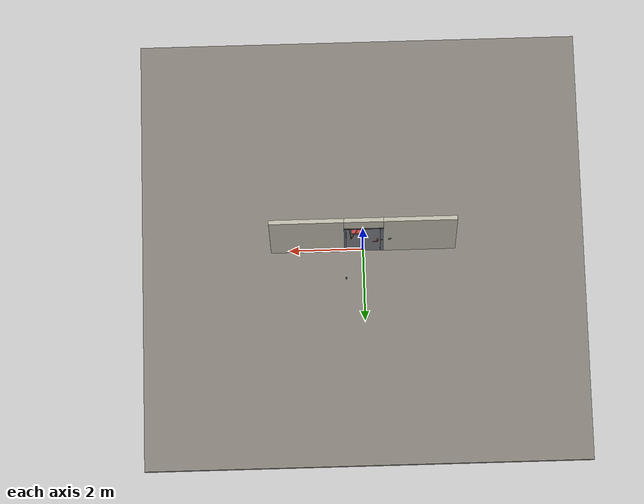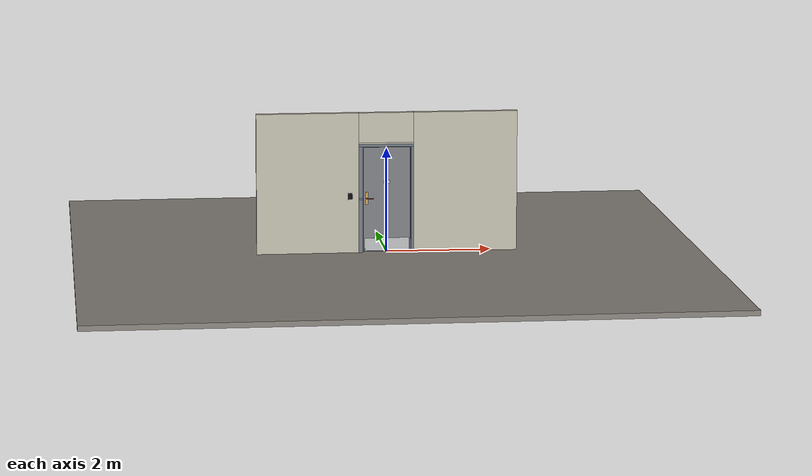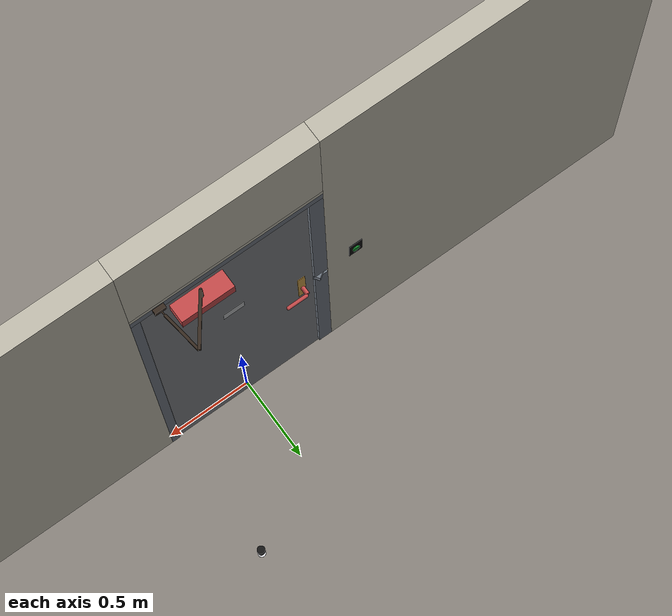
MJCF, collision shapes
<?xml version="1.0" ?>
<mujoco model="db0719_swing_single_full">
  <compiler angle="radian" meshdir="../../hardware" texturedir="../../textures" autolimits="true" inertiafromgeom="false"/>
  <option timestep="0.002" integrator="implicitfast" cone="elliptic" impratio="10" noslip_iterations="3">
    <flag multiccd="enable"/>
  </option>
  <size memory="16M"/>
  <default>
    <geom condim="4" solref="0.005 1" solimp="0.95 0.99 0.001"/>
    <joint solreflimit="0.005 1" solimplimit="0.95 0.99 0.001"/>
    <tendon solreflimit="0.005 1"/>
    <equality solref="0.002 1"/>
  </default>
  <visual>
    <headlight ambient="0.4 0.4 0.4" diffuse="0.7 0.7 0.7" specular="0.2 0.2 0.2"/>
    <quality shadowsize="4096"/>
    <map znear="0.01" zfar="60"/>
  </visual>
  <asset>
    <mesh name="closer_body_fdc4667657" file="closer_body_fdc4667657.obj"/>
    <mesh name="hinge_dcb8da44bf" file="hinge_dcb8da44bf.obj"/>
    <mesh name="hinge_jamb_8e208d7310" file="hinge_jamb_8e208d7310.obj"/>
    <mesh name="lever_6fbb1e9593" file="lever_6fbb1e9593.obj"/>
    <material name="mat_floor" rgba="0.55 0.53 0.5 1" specular="0.2" shininess="0.15" reflectance="0"/>
    <material name="mat_wall" rgba="0.78 0.76 0.7 1" specular="0.2" shininess="0.1" reflectance="0"/>
    <material name="mat_leaf" rgba="0.5 0.51 0.53 1" specular="0.2" shininess="0.32" reflectance="0"/>
    <material name="mat_hinge" rgba="0.65 0.66 0.68 1" specular="0.74" shininess="0.5" reflectance="0.36"/>
    <material name="mat_op_brass" rgba="0.85 0.66 0.3 1" specular="0.8" shininess="0.75" reflectance="0.4"/>
    <material name="mat_trim" rgba="0.85 0.66 0.3 1" specular="0.8" shininess="0.75" reflectance="0.4"/>
    <material name="mat_bolt" rgba="0.85 0.66 0.3 1" specular="0.8" shininess="0.75" reflectance="0.4"/>
    <material name="mat_frame" rgba="0.45 0.48 0.52 1" specular="0.32" shininess="0.6" reflectance="0.08"/>
    <material name="mat_closer" rgba="0.22 0.17 0.13 1" specular="0.8" shininess="0.6" reflectance="0.4"/>
    <material name="mat_kick" rgba="0.75 0.76 0.77 1" specular="0.8" shininess="0.65" reflectance="0.4"/>
    <material name="mat_sign" rgba="0.75 0.76 0.77 1" specular="0.8" shininess="0.65" reflectance="0.4"/>
    <material name="mat_wallreader" rgba="0.05 0.05 0.05 1" specular="0.38" shininess="0.3" reflectance="0.12"/>
    <material name="mat_rex" rgba="0.1 0.6 0.2 1" specular="0.2" shininess="0.6" reflectance="0"/>
    <material name="mat_bumper_stop" rgba="0.08 0.08 0.08 1" specular="0.2" shininess="0.1" reflectance="0"/>
    <material name="mat_stop_base" rgba="0.9 0.9 0.92 1" specular="0.8" shininess="0.9" reflectance="0.4"/>
    <texture name="skybox" type="skybox" builtin="gradient" rgb1="0.6 0.7 0.85" rgb2="0.9 0.92 0.95" width="256" height="256"/>
  </asset>
  <worldbody>
    <light name="sun" pos="1.5 -2.5 4" dir="-0.3 0.5 -0.8" directional="true" diffuse="0.8 0.8 0.8" specular="0.3 0.3 0.3" castshadow="true"/>
    <light name="fill" pos="-1.5 2.5 3" dir="0.3 -0.5 -0.7" directional="true" diffuse="0.35 0.35 0.4" castshadow="false"/>
    <camera name="robot_view" pos="0 -2.564187 1.734312" xyaxes="1 0 0 0 0.26963 0.962964" fovy="52"/>
    <camera name="far_view" pos="0 2.520188 1.734312" xyaxes="-1 0 0 0 -0.26963 0.962964" fovy="52"/>
    <camera name="iso" pos="-1.932062 -2.157437 2.141063" xyaxes="0.741536 -0.670913 0 0.242917 0.268487 0.932151" fovy="46"/>
    <camera name="detail_handle" pos="-0.102 -0.8835 1.32" xyaxes="0.97561 0.219512 0 -0.070934 0.315262 0.94635" fovy="38"/>
    <geom name="floor" type="box" size="6 6 0.05" pos="0 0 -0.05" material="mat_floor" group="0" contype="1" conaffinity="1" friction="0.8 0.005 0.0001" density="2400"/>
    <geom name="wall_left" type="box" size="0.9795 0.0575 1.35" pos="-1.5205 -0.022 1.35" material="mat_wall" group="0" contype="1" conaffinity="1" friction="0.6 0.005 0.0001" density="800"/>
    <geom name="wall_right" type="box" size="0.9945 0.0575 1.35" pos="1.5055 -0.022 1.35" material="mat_wall" group="0" contype="1" conaffinity="1" friction="0.6 0.005 0.0001" density="800"/>
    <geom name="wall_header" type="box" size="0.526 0.0575 0.2875" pos="-0.015 -0.022 2.4125" material="mat_wall" group="0" contype="1" conaffinity="1" friction="0.6 0.005 0.0001" density="800"/>
    <geom name="hinge_0_jamb" type="mesh" mesh="hinge_jamb_8e208d7310" pos="0.458 0.0355 0.259" quat="0 0 0 1" material="mat_hinge" group="1" contype="0" conaffinity="0" density="7850"/>
    <geom name="hinge_1_jamb" type="mesh" mesh="hinge_jamb_8e208d7310" pos="0.458 0.0355 1.025" quat="0 0 0 1" material="mat_hinge" group="1" contype="0" conaffinity="0" density="7850"/>
    <geom name="hinge_2_jamb" type="mesh" mesh="hinge_jamb_8e208d7310" pos="0.458 0.0355 1.861" quat="0 0 0 1" material="mat_hinge" group="1" contype="0" conaffinity="0" density="7850"/>
    <geom name="jamb_hinge" type="box" size="0.025 0.0575 1.0225" pos="0.486 -0.022 1.0225" material="mat_frame" group="0" contype="1" conaffinity="1" friction="0.6 0.005 0.0001" density="300"/>
    <geom name="strike_1040_wall_n" type="box" size="0.04 0.035 0.0183" pos="-0.501 -0.0445 1.04" material="mat_frame" group="0" contype="1" conaffinity="1" friction="0.6 0.005 0.0001" density="300"/>
    <geom name="strike_1040_wall_p" type="box" size="0.04 0.008 0.0183" pos="-0.501 0.0175 1.04" material="mat_frame" group="0" contype="1" conaffinity="1" friction="0.6 0.005 0.0001" density="300"/>
    <geom name="strike_1040_ramp" type="box" size="0.04 0.018028 0.0183" pos="-0.504282 0.018312 1.04" quat="0.957092 0 0 0.289784" material="mat_frame" group="0" contype="1" conaffinity="1" friction="0.12 0.005 0.0001" density="300"/>
    <geom name="strike_1040_back" type="box" size="0.0285 0.0095 0.0183" pos="-0.5125 0 1.04" material="mat_frame" group="0" contype="1" conaffinity="1" friction="0.6 0.005 0.0001" density="300"/>
    <geom name="jamb_strike_0" type="box" size="0.04 0.0575 0.51085" pos="-0.501 -0.022 0.51085" material="mat_frame" group="0" contype="1" conaffinity="1" friction="0.6 0.005 0.0001" density="300"/>
    <geom name="jamb_strike_1" type="box" size="0.04 0.0575 0.49335" pos="-0.501 -0.022 1.55165" material="mat_frame" group="0" contype="1" conaffinity="1" friction="0.6 0.005 0.0001" density="300"/>
    <geom name="jamb_head" type="box" size="0.526 0.0575 0.025" pos="-0.015 -0.022 2.07" material="mat_frame" group="0" contype="1" conaffinity="1" friction="0.6 0.005 0.0001" density="300"/>
    <geom name="head_stud" type="box" size="0.526 0.0575 0.015" pos="-0.015 -0.022 2.11" material="mat_wall" group="0" contype="1" conaffinity="1" friction="0.6 0.005 0.0001" density="500"/>
    <geom name="stop_hinge" type="box" size="0.0055 0.016 1.0225" pos="0.4555 -0.045 1.0225" material="mat_frame" group="0" contype="1" conaffinity="1" friction="0.6 0.005 0.0001" density="300"/>
    <geom name="stop_strike" type="box" size="0.0055 0.016 1.0225" pos="-0.4555 -0.045 1.0225" material="mat_frame" group="0" contype="1" conaffinity="1" friction="0.6 0.005 0.0001" density="300"/>
    <geom name="stop_head" type="box" size="0.461 0.016 0.0055" pos="0 -0.045 2.0395" material="mat_frame" group="0" contype="1" conaffinity="1" friction="0.6 0.005 0.0001" density="300"/>
    <geom name="closer_bracket" type="box" size="0.03 0.012 0.014" pos="0.361 0.0475 2.075" material="mat_closer" group="1" contype="0" conaffinity="0" density="2700"/>
    <geom name="wall_reader" type="box" size="0.04 0.015 0.06" pos="-0.711 -0.0945 1.1" material="mat_wallreader" group="0" contype="1" conaffinity="1" friction="0.6 0.005 0.0001" density="1000"/>
    <geom name="rex_plate" type="box" size="0.04 0.003 0.06" pos="-0.711 0.0385 1.1" material="mat_wallreader" group="1" contype="0" conaffinity="0" density="1000"/>
    <geom name="door_stop_base" type="cylinder" size="0.022 0.003" pos="0.474 0.8124 0.003" material="mat_stop_base" group="0" contype="1" conaffinity="1" friction="0.6 0.005 0.0001" density="7850"/>
    <geom name="door_stop_post" type="cylinder" size="0.012 0.0245" pos="0.474 0.8124 0.0305" material="mat_stop_base" group="0" contype="1" conaffinity="1" friction="0.6 0.005 0.0001" density="7850"/>
    <geom name="door_stop_bumper" type="cylinder" size="0.022 0.02" pos="0.474 0.8124 0.075" material="mat_bumper_stop" group="0" contype="1" conaffinity="1" friction="0.6 0.005 0.0001" density="1100"/>
    <site name="approach_point" pos="0 -1.5 0" quat="1 0 0 0" size="0.05" rgba="0.2 0.9 0.2 0.5" group="4"/>
    <site name="goal_point" pos="0 1.5 0" quat="1 0 0 0" size="0.05" rgba="0.2 0.9 0.2 0.5" group="4"/>
    <site name="door_plane_center" pos="0 0 1.0225" quat="1 0 0 0" size="0.02" rgba="0.2 0.9 0.2 0.5" group="4"/>
    <body name="rex_button" pos="-0.711 0.0415 1.1">
      <inertial pos="0 0.004 0" mass="0.010053" quat="0 0 0.707107 -0.707107" diaginertia="0.000001059 0.000001059 0.000002011"/>
      <joint name="rex_button_slide" type="slide" axis="0 -1 0" limited="true" range="0 0.004" damping="1" stiffness="1500" springref="-0.004" armature="0.1"/>
      <geom name="rex_button_geom" type="cylinder" size="0.02 0.004" pos="0 0.004 0" quat="0.707107 -0.707107 0 0" material="mat_rex" group="0" contype="1" conaffinity="1" friction="0.6 0.005 0.0001" density="1000"/>
    </body>
    <body name="leaf" pos="0.461 0 0">
      <inertial pos="-0.434592 0.010511 1.134393" mass="95.622279" quat="0.511395 -0.514233 -0.496987 -0.476491" diaginertia="6.172452264 39.978130573 45.982318865"/>
      <joint name="leaf_hinge" type="hinge" axis="0 0 -1" pos="-0.003 0.0355 0" limited="true" range="0 1.570796" damping="12.25611" frictionloss="1.067746" stiffness="14.998762" springref="-3.132925" armature="0.02"/>
      <geom name="leaf_slab" type="box" size="0.457 0.0285 1.016" pos="-0.46 0 1.025" material="mat_leaf" group="0" contype="1" conaffinity="1" friction="0.4 0.005 0.0001" density="1"/>
      <geom name="hinge_0" type="mesh" mesh="hinge_dcb8da44bf" pos="-0.003 0.0355 0.259" quat="0 0 0 1" material="mat_hinge" group="1" contype="0" conaffinity="0" density="7850"/>
      <geom name="hinge_1" type="mesh" mesh="hinge_dcb8da44bf" pos="-0.003 0.0355 1.025" quat="0 0 0 1" material="mat_hinge" group="1" contype="0" conaffinity="0" density="7850"/>
      <geom name="hinge_2" type="mesh" mesh="hinge_dcb8da44bf" pos="-0.003 0.0355 1.861" quat="0 0 0 1" material="mat_hinge" group="1" contype="0" conaffinity="0" density="7850"/>
      <geom name="leaf_handle_escutcheon_n" type="box" size="0.0225 0.0015 0.12" pos="-0.847 -0.03 1.04" material="mat_op_brass" group="1" contype="0" conaffinity="0" density="3000"/>
      <geom name="leaf_handle_escutcheon_p" type="box" size="0.0225 0.0015 0.12" pos="-0.847 0.03 1.04" material="mat_op_brass" group="1" contype="0" conaffinity="0" density="3000"/>
      <geom name="leaf_latch_bolt_faceplate" type="box" size="0.0006 0.014 0.0283" pos="-0.9164 0 1.04" material="mat_bolt" group="1" contype="0" conaffinity="0" density="8500"/>
      <geom name="closer_body" type="mesh" mesh="closer_body_fdc4667657" pos="-0.3 0.0285 1.952" quat="0 0 0.707107 0.707107" material="mat_closer" group="1" contype="0" conaffinity="0" density="2000"/>
      <geom name="closer_body_col" type="box" size="0.145 0.05 0.035" pos="-0.3 0.0785 1.952" material="mat_closer" group="3" contype="1" conaffinity="1" rgba="0.8 0.3 0.3 0.25" friction="0.6 0.005 0.0001" density="2000"/>
      <geom name="closer_pinion_shaft" type="cylinder" size="0.008 0.0615" pos="-0.3 0.0785 2.0135" material="mat_closer" group="1" contype="0" conaffinity="0" density="2700"/>
      <geom name="kick_plate_n" type="box" size="0.427 0.0008 0.125" pos="-0.46 -0.0293 0.144" material="mat_kick" group="2" contype="0" conaffinity="0" density="7900"/>
      <geom name="sign_push" type="box" size="0.06 0.001 0.03" pos="-0.46 -0.0295 1.359" material="mat_sign" group="2" contype="0" conaffinity="0" density="7900"/>
      <geom name="sign_pull" type="box" size="0.06 0.001 0.03" pos="-0.46 0.0295 1.359" material="mat_sign" group="2" contype="0" conaffinity="0" density="7900"/>
      <site name="leaf_edge_mid" pos="-0.917 0 1.016" quat="1 0 0 0" size="0.02" rgba="0.2 0.9 0.2 0.5" group="4"/>
      <body name="leaf_handle" pos="-0.847 0 1.04">
        <inertial pos="0.039478 0 0" mass="0.84824" quat="0 0.707107 0.707107 0" diaginertia="0.001707266 0.004547347 0.006208265"/>
        <joint name="leaf_handle_hinge" type="hinge" axis="0 1 0" limited="true" range="0 0.7" damping="0.270118" frictionloss="0.064" stiffness="1.4" springref="-0.428571" armature="0.01"/>
        <geom name="leaf_handle_spindle" type="cylinder" size="0.006 0.0405" pos="0 0 0" quat="0.707107 -0.707107 0 0" material="mat_op_brass" group="1" contype="0" conaffinity="0" density="7850"/>
        <geom name="leaf_handle_lever_n" type="mesh" mesh="lever_6fbb1e9593" pos="0 -0.0285 0" quat="0 0 -0.707107 0.707107" material="mat_op_brass" group="1" contype="0" conaffinity="0" density="3000"/>
        <geom name="leaf_handle_lever_col_n" type="capsule" size="0.01 0.055" pos="0.065 -0.0835 0" quat="0.707107 0 0.707107 0" material="mat_op_brass" group="3" contype="1" conaffinity="1" rgba="0.8 0.3 0.3 0.25" friction="0.7 0.01 0.0001" density="3000"/>
        <geom name="leaf_handle_hub_col_n" type="cylinder" size="0.012 0.022" pos="0 -0.0585 0" quat="0.707107 -0.707107 0 0" material="mat_op_brass" group="3" contype="1" conaffinity="1" rgba="0.8 0.3 0.3 0.25" friction="0.6 0.005 0.0001" density="3000"/>
        <geom name="leaf_handle_lever_p" type="mesh" mesh="lever_6fbb1e9593" pos="0 0.0285 0" quat="0 0 0.707107 0.707107" material="mat_op_brass" group="1" contype="0" conaffinity="0" density="3000"/>
        <geom name="leaf_handle_lever_col_p" type="capsule" size="0.01 0.055" pos="0.065 0.0835 0" quat="0.707107 0 0.707107 0" material="mat_op_brass" group="3" contype="1" conaffinity="1" rgba="0.8 0.3 0.3 0.25" friction="0.7 0.01 0.0001" density="3000"/>
        <geom name="leaf_handle_hub_col_p" type="cylinder" size="0.012 0.022" pos="0 0.0585 0" quat="0.707107 -0.707107 0 0" material="mat_op_brass" group="3" contype="1" conaffinity="1" rgba="0.8 0.3 0.3 0.25" friction="0.6 0.005 0.0001" density="3000"/>
        <site name="leaf_handle_grip_n" pos="0.104 -0.0835 0" quat="1 0 0 0" size="0.012" rgba="0.2 0.9 0.2 0.5" group="4"/>
        <site name="leaf_handle_grip_p" pos="0.104 0.0835 0" quat="1 0 0 0" size="0.012" rgba="0.2 0.9 0.2 0.5" group="4"/>
      </body>
      <body name="leaf_latch_bolt" pos="-0.917 0 1.04">
        <inertial pos="0.0055 0 0" mass="0.074627" quat="0.92388 0.382683 0 0" diaginertia="0.000002271 0.000013255 0.000013255"/>
        <joint name="leaf_latch_bolt_slide" type="slide" axis="1 0 0" limited="true" range="0 0.019" damping="2" frictionloss="0.3" stiffness="600" springref="-0.01" armature="0.1"/>
        <geom name="leaf_latch_bolt_capsule" type="capsule" size="0.008 0.0165" pos="0.0055 0 0" quat="0.707107 0 -0.707107 0" material="mat_bolt" group="0" contype="1" conaffinity="1" friction="0.2 0.005 0.0001" density="8500"/>
      </body>
      <body name="closer_arm_main" pos="-0.3 0.0785 2.075" quat="0.890947 0 0 0.454107">
        <inertial pos="0.14 0 0" mass="0.12096" quat="1 0 0 0" diaginertia="0.000003588 0.00079128 0.000792852"/>
        <joint name="closer_pinion" type="hinge" axis="0 0 1" limited="false" damping="0.01" armature="0.002"/>
        <geom name="closer_arm_main_geom" type="box" size="0.14 0.008 0.005" pos="0.14 0 0" material="mat_closer" group="1" contype="0" conaffinity="0" density="2700"/>
        <body name="closer_arm_fore" pos="0.28 0 0" quat="0.373215 0 0 -0.927745">
          <inertial pos="0.128088 0 0" mass="0.076531" quat="1 0 0 0" diaginertia="0.000001771 0.000437665 0.000438201"/>
          <joint name="closer_elbow" type="hinge" axis="0 0 1" limited="false" damping="0.01" armature="0.002"/>
          <geom name="closer_arm_fore_geom" type="box" size="0.1125 0.007 0.004" pos="0.1125 0 0" material="mat_closer" group="1" contype="0" conaffinity="0" density="2700"/>
          <geom name="closer_fore_neck" type="box" size="0.0175 0.003 0.003" pos="0.2425 0 0" material="mat_closer" group="1" contype="0" conaffinity="0" density="2700"/>
          <geom name="closer_fore_pivot" type="cylinder" size="0.005 0.012" pos="0.26 0 0" material="mat_closer" group="1" contype="0" conaffinity="0" density="2700"/>
        </body>
      </body>
    </body>
  </worldbody>
  <tendon>
    <fixed name="leaf_latch_bolt_coupling" limited="true" range="0 10">
      <joint joint="leaf_latch_bolt_slide" coef="1"/>
      <joint joint="leaf_handle_hinge" coef="-0.028788"/>
    </fixed>
  </tendon>
  <equality>
    <connect name="closer_arm_connect" body1="closer_arm_fore" body2="world" anchor="0.26 0 0" active="true"/>
  </equality>
  <contact>
    <exclude body1="closer_arm_main" body2="leaf"/>
    <exclude body1="closer_arm_fore" body2="leaf"/>
    <exclude body1="closer_arm_main" body2="closer_arm_fore"/>
  </contact>
  <sensor>
    <jointpos name="leaf_hinge_pos" joint="leaf_hinge"/>
    <jointvel name="leaf_hinge_vel" joint="leaf_hinge"/>
    <jointpos name="leaf_handle_hinge_pos" joint="leaf_handle_hinge"/>
    <jointvel name="leaf_handle_hinge_vel" joint="leaf_handle_hinge"/>
    <jointpos name="leaf_latch_bolt_slide_pos" joint="leaf_latch_bolt_slide"/>
    <jointvel name="leaf_latch_bolt_slide_vel" joint="leaf_latch_bolt_slide"/>
    <jointpos name="rex_button_slide_pos" joint="rex_button_slide"/>
    <jointvel name="rex_button_slide_vel" joint="rex_button_slide"/>
  </sensor>
</mujoco>
